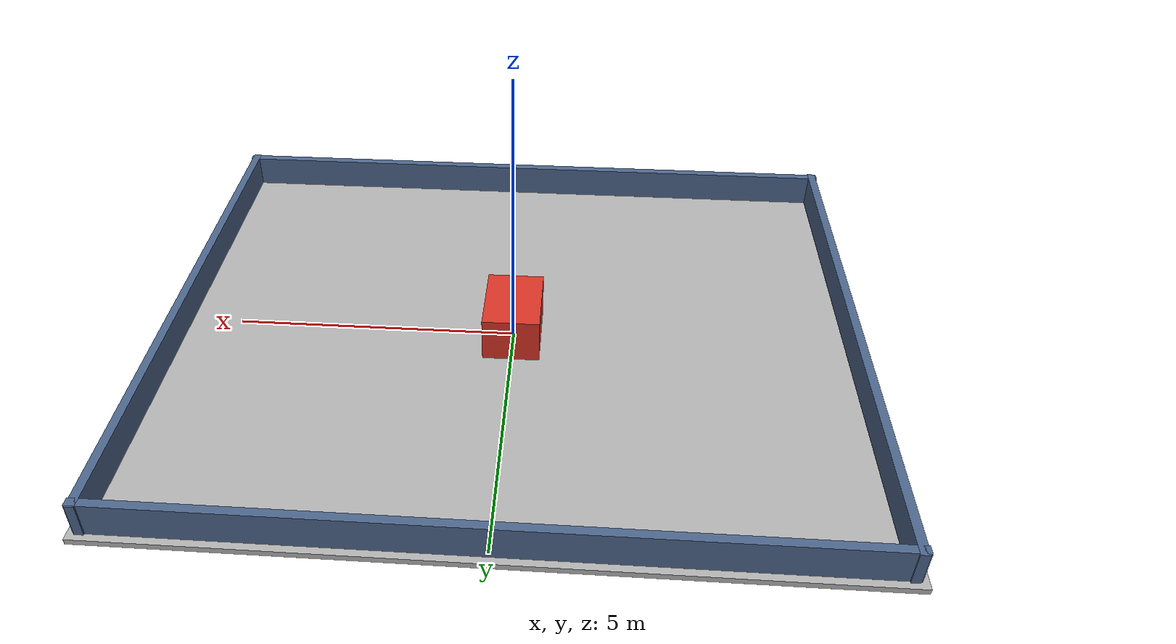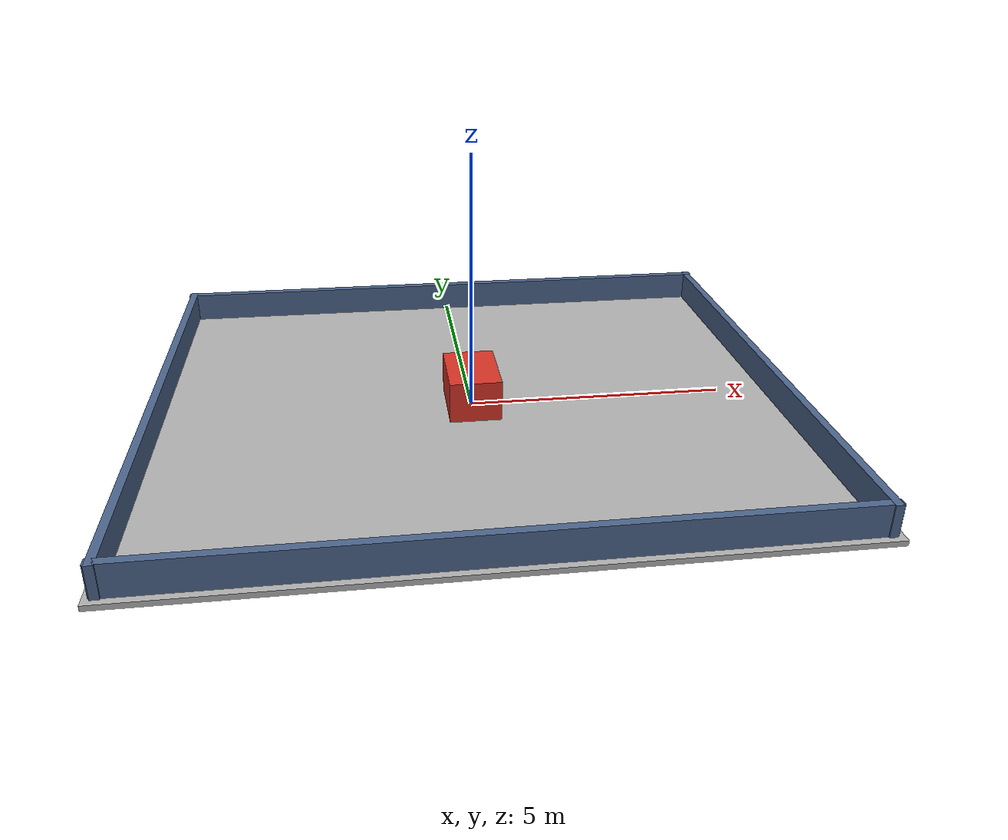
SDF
<?xml version='1.0' encoding='utf-8'?>
<sdf version="1.6">
  <world name="v550_custom">
    <gravity>0 0 -9.8</gravity>
    <physics type="ode">
      <max_step_size>0.001</max_step_size>
      <real_time_update_rate>1000</real_time_update_rate>
    </physics>
    <scene>
      <ambient>0.7 0.7 0.7 1</ambient>
      <background>0.8 0.8 0.85 1</background>
      <shadows>false</shadows>
    </scene>
    <light type="directional" name="sun">
      <pose>0 0 10 0 0 0</pose>
      <diffuse>0.9 0.9 0.9 1</diffuse>
      <specular>0.1 0.1 0.1 1</specular>
      <direction>-0.2 0.1 -1</direction>
      <cast_shadows>false</cast_shadows>
    </light>
    <gui>
      <camera name="user_camera">
        <pose>0 0 12 0 1.57079632679 0</pose>
        <view_controller>orbit</view_controller>
      </camera>
    </gui>
    <model name="floor">
      <static>true</static>
      <pose>0 0 -0.05 0 0 0</pose>
      <link name="link">
        <collision name="collision">
          <geometry>
            <box>
              <size>12.4 10.4 0.1</size>
            </box>
          </geometry>
        </collision>
        <visual name="visual">
          <geometry>
            <box>
              <size>12.4 10.4 0.1</size>
            </box>
          </geometry>
          <material>
            <ambient>0.65 0.65 0.65 1</ambient>
            <diffuse>0.7 0.7 0.7 1</diffuse>
          </material>
        </visual>
      </link>
    </model>
    <model name="wall_north">
      <static>true</static>
      <pose>0 5 0.3 0 0 0</pose>
      <link name="link">
        <collision name="collision">
          <geometry>
            <box>
              <size>12.2 0.15 0.6</size>
            </box>
          </geometry>
        </collision>
        <visual name="visual">
          <geometry>
            <box>
              <size>12.2 0.15 0.6</size>
            </box>
          </geometry>
          <material>
            <ambient>0.3 0.4 0.55 1</ambient>
            <diffuse>0.3 0.4 0.55 1</diffuse>
          </material>
        </visual>
      </link>
    </model>
    <model name="wall_south">
      <static>true</static>
      <pose>0 -5 0.3 0 0 0</pose>
      <link name="link">
        <collision name="collision">
          <geometry>
            <box>
              <size>12.2 0.15 0.6</size>
            </box>
          </geometry>
        </collision>
        <visual name="visual">
          <geometry>
            <box>
              <size>12.2 0.15 0.6</size>
            </box>
          </geometry>
          <material>
            <ambient>0.3 0.4 0.55 1</ambient>
            <diffuse>0.3 0.4 0.55 1</diffuse>
          </material>
        </visual>
      </link>
    </model>
    <model name="wall_east">
      <static>true</static>
      <pose>6 0 0.3 0 0 0</pose>
      <link name="link">
        <collision name="collision">
          <geometry>
            <box>
              <size>0.15 10.2 0.6</size>
            </box>
          </geometry>
        </collision>
        <visual name="visual">
          <geometry>
            <box>
              <size>0.15 10.2 0.6</size>
            </box>
          </geometry>
          <material>
            <ambient>0.3 0.4 0.55 1</ambient>
            <diffuse>0.3 0.4 0.55 1</diffuse>
          </material>
        </visual>
      </link>
    </model>
    <model name="wall_west">
      <static>true</static>
      <pose>-6 0 0.3 0 0 0</pose>
      <link name="link">
        <collision name="collision">
          <geometry>
            <box>
              <size>0.15 10.2 0.6</size>
            </box>
          </geometry>
        </collision>
        <visual name="visual">
          <geometry>
            <box>
              <size>0.15 10.2 0.6</size>
            </box>
          </geometry>
          <material>
            <ambient>0.3 0.4 0.55 1</ambient>
            <diffuse>0.3 0.4 0.55 1</diffuse>
          </material>
        </visual>
      </link>
    </model>
    <model name="test_obstacle">
      <static>true</static>
      <pose>0 0 0.4 0 0 0</pose>
      <link name="link">
        <collision name="collision">
          <geometry>
            <box>
              <size>1.0 1.4 0.8</size>
            </box>
          </geometry>
        </collision>
        <visual name="visual">
          <geometry>
            <box>
              <size>1.0 1.4 0.8</size>
            </box>
          </geometry>
          <material>
            <ambient>0.85 0.2 0.15 1</ambient>
            <diffuse>0.85 0.2 0.15 1</diffuse>
          </material>
        </visual>
      </link>
    </model>
  </world>
</sdf>
